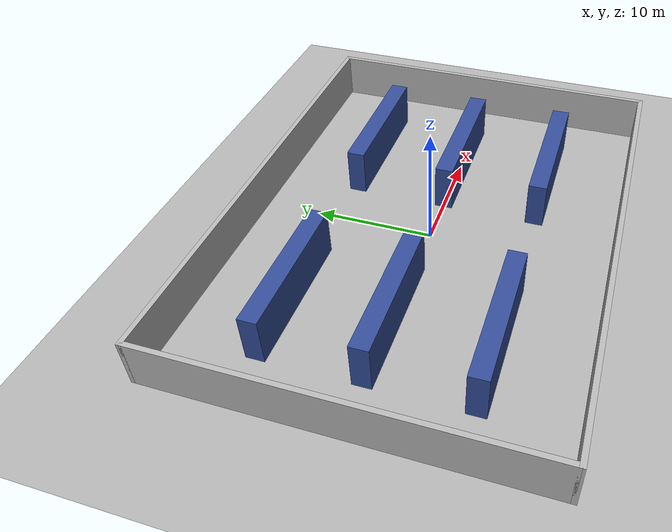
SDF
<?xml version="1.0" ?>
<sdf version="1.8">
  <world name="large_warehouse">
    <physics name="1ms" type="ignored"><max_step_size>0.001</max_step_size><real_time_factor>1.0</real_time_factor></physics>
    <plugin filename="libignition-gazebo-physics-system.so" name="ignition::gazebo::systems::Physics"/>
    <plugin filename="libignition-gazebo-scene-broadcaster-system.so" name="ignition::gazebo::systems::SceneBroadcaster"/>
    <plugin filename="libignition-gazebo-user-commands-system.so" name="ignition::gazebo::systems::UserCommands"/>
    <plugin filename="libignition-gazebo-sensors-system.so" name="ignition::gazebo::systems::Sensors"><render_engine>ogre</render_engine></plugin>
    <plugin filename="libignition-gazebo-imu-system.so" name="ignition::gazebo::systems::Imu"/>

    <light type="directional" name="sun"><cast_shadows>true</cast_shadows><pose>0 0 20 0 0 0</pose><diffuse>0.9 0.9 0.9 1</diffuse><specular>0.2 0.2 0.2 1</specular><direction>-0.5 0.1 -0.9</direction></light>
    <model name="ground_plane"><static>true</static><link name="link"><collision name="c"><geometry><plane><normal>0 0 1</normal><size>60 60</size></plane></geometry></collision><visual name="v"><geometry><plane><normal>0 0 1</normal><size>60 60</size></plane></geometry><material><ambient>0.7 0.7 0.7 1</ambient><diffuse>0.7 0.7 0.7 1</diffuse></material></visual></link></model>

    <!-- Large 40m x 30m Facility Perimeter -->
    <model name="wall_n"><static>true</static><pose>0 15 2 0 0 0</pose><link name="l"><collision name="c"><geometry><box><size>40.4 0.4 4</size></box></geometry></collision><visual name="v"><geometry><box><size>40.4 0.4 4</size></box></geometry></visual></link></model>
    <model name="wall_s"><static>true</static><pose>0 -15 2 0 0 0</pose><link name="l"><collision name="c"><geometry><box><size>40.4 0.4 4</size></box></geometry></collision><visual name="v"><geometry><box><size>40.4 0.4 4</size></box></geometry></visual></link></model>
    <model name="wall_e"><static>true</static><pose>20 0 2 0 0 0</pose><link name="l"><collision name="c"><geometry><box><size>0.4 30.0 4</size></box></geometry></collision><visual name="v"><geometry><box><size>0.4 30.0 4</size></box></geometry></visual></link></model>
    <model name="wall_w"><static>true</static><pose>-20 0 2 0 0 0</pose><link name="l"><collision name="c"><geometry><box><size>0.4 30.0 4</size></box></geometry></collision><visual name="v"><geometry><box><size>0.4 30.0 4</size></box></geometry></visual></link></model>

    <!-- Industrial High-Bay Racking Rows (3 Multi-Aisle Arrays) -->
    <model name="rack_row_1a"><static>true</static><pose>-10 8 2 0 0 0</pose><link name="l"><collision name="c"><geometry><box><size>12 1.5 4</size></box></geometry></collision><visual name="v"><geometry><box><size>12 1.5 4</size></box></geometry><material><ambient>0.2 0.3 0.6 1</ambient><diffuse>0.2 0.3 0.6 1</diffuse></material></visual></link></model>
    <model name="rack_row_1b"><static>true</static><pose>10 8 2 0 0 0</pose><link name="l"><collision name="c"><geometry><box><size>12 1.5 4</size></box></geometry></collision><visual name="v"><geometry><box><size>12 1.5 4</size></box></geometry><material><ambient>0.2 0.3 0.6 1</ambient><diffuse>0.2 0.3 0.6 1</diffuse></material></visual></link></model>
    <model name="rack_row_2a"><static>true</static><pose>-10 0 2 0 0 0</pose><link name="l"><collision name="c"><geometry><box><size>12 1.5 4</size></box></geometry></collision><visual name="v"><geometry><box><size>12 1.5 4</size></box></geometry><material><ambient>0.2 0.3 0.6 1</ambient><diffuse>0.2 0.3 0.6 1</diffuse></material></visual></link></model>
    <model name="rack_row_2b"><static>true</static><pose>10 0 2 0 0 0</pose><link name="l"><collision name="c"><geometry><box><size>12 1.5 4</size></box></geometry></collision><visual name="v"><geometry><box><size>12 1.5 4</size></box></geometry><material><ambient>0.2 0.3 0.6 1</ambient><diffuse>0.2 0.3 0.6 1</diffuse></material></visual></link></model>
    <model name="rack_row_3a"><static>true</static><pose>-10 -8 2 0 0 0</pose><link name="l"><collision name="c"><geometry><box><size>12 1.5 4</size></box></geometry></collision><visual name="v"><geometry><box><size>12 1.5 4</size></box></geometry><material><ambient>0.2 0.3 0.6 1</ambient><diffuse>0.2 0.3 0.6 1</diffuse></material></visual></link></model>
    <model name="rack_row_3b"><static>true</static><pose>10 -8 2 0 0 0</pose><link name="l"><collision name="c"><geometry><box><size>12 1.5 4</size></box></geometry></collision><visual name="v"><geometry><box><size>12 1.5 4</size></box></geometry><material><ambient>0.2 0.3 0.6 1</ambient><diffuse>0.2 0.3 0.6 1</diffuse></material></visual></link></model>
  </world>
</sdf>
